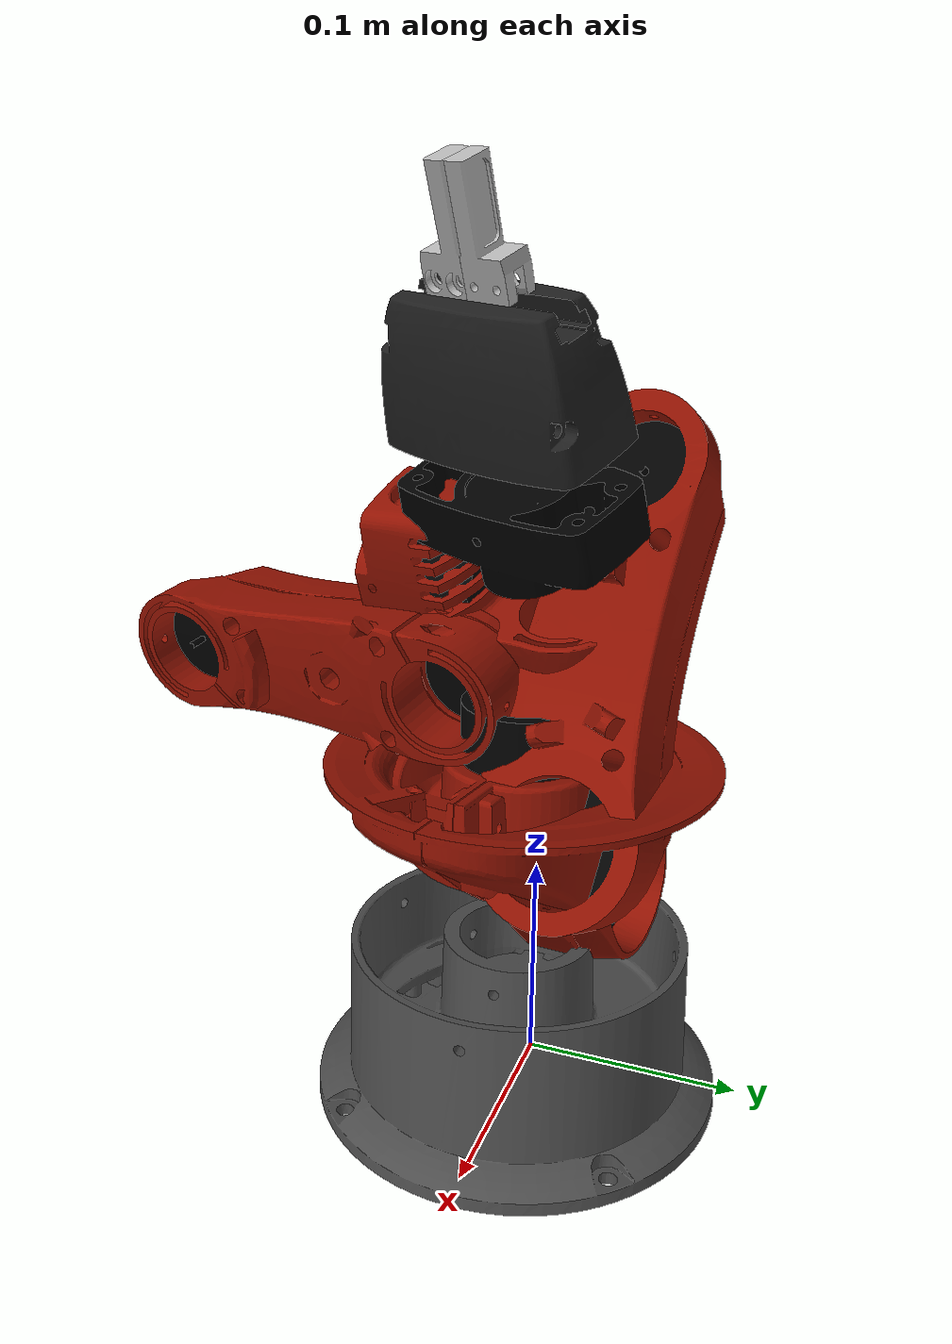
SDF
<sdf version='1.6'>
  <model name='youbot'>
    <link name='base_link'>
      <pose frame=''>0 0 0 0 -0 0</pose>
      <inertial>
        <pose frame=''>0 0 0 0 -0 0</pose>
        <mass>10.845</mass>
        <inertia>
          <ixx>0.11</ixx>
          <ixy>0</ixy>
          <ixz>0</ixz>
          <iyy>0.11</iyy>
          <iyz>0</iyz>
          <izz>0.11</izz>
        </inertia>
      </inertial>
      <collision name='base_link_fixed_joint_lump__arm_link_0_collision'>
        <pose frame=''>0 0 0 0 -0 0</pose>
        <geometry>
          <mesh>
            <scale>1 1 1</scale>
            <uri>model://youbot_description/meshes/youbot_arm/arm0_convex.dae</uri>
          </mesh>
        </geometry>
        <surface>
          <contact>
            <ode/>
          </contact>
          <friction>
            <ode/>
          </friction>
        </surface>
      </collision>
      <visual name='base_link_fixed_joint_lump__arm_link_0_visual'>
        <pose frame=''>0 0 0 0 -0 0</pose>
        <geometry>
          <mesh>
            <scale>1 1 1</scale>
            <uri>model://youbot_description/meshes/youbot_arm/arm0.dae</uri>
          </mesh>
        </geometry>
        <material>
          <script>
            <name>youbot/DarkGrey</name>
            <uri>file://media/materials/scripts/gazebo.material</uri>
          </script>
        </material>
      </visual>
      <gravity>1</gravity>
      <velocity_decay/>
    </link>
    <link name='arm_link_1'>
      <pose frame=''>0.024 0 0.096 0 -0 2.96706</pose>
      <inertial>
        <pose frame=''>0.01489 0.00213 0.00213 0 -0 0</pose>
        <mass>2.412</mass>
        <inertia>
          <ixx>0.003863</ixx>
          <ixy>-0.000979</ixy>
          <ixz>0</ixz>
          <iyy>0.006196</iyy>
          <iyz>0</iyz>
          <izz>0.006369</izz>
        </inertia>
      </inertial>
      <collision name='arm_link_1_collision'>
        <pose frame=''>0 0 0 0 -0 0</pose>
        <geometry>
          <mesh>
            <scale>1 1 1</scale>
            <uri>model://youbot_description/meshes/youbot_arm/arm1_convex.dae</uri>
          </mesh>
        </geometry>
        <surface>
          <contact>
            <ode/>
          </contact>
          <friction>
            <ode/>
          </friction>
        </surface>
      </collision>
      <visual name='arm_link_1_visual'>
        <pose frame=''>0 0 0 0 -0 0</pose>
        <geometry>
          <mesh>
            <scale>1 1 1</scale>
            <uri>model://youbot_description/meshes/youbot_arm/arm1.dae</uri>
          </mesh>
        </geometry>
        <material>
          <script>
            <uri>__default__</uri>
            <name>__default__</name>
          </script>
        </material>
      </visual>
      <gravity>1</gravity>
      <velocity_decay/>
    </link>
    <joint name='arm_joint_1' type='revolute'>
      <child>arm_link_1</child>
      <parent>base_link</parent>
      <axis>
        <xyz>0 0 -1</xyz>
        <limit>
          <lower>0</lower>
          <upper>5.89921</upper>
          <effort>9.5</effort>
          <velocity>1.5708</velocity>
        </limit>
        <dynamics>
          <damping>1</damping>
          <friction>1</friction>
          <spring_reference>0</spring_reference>
          <spring_stiffness>0</spring_stiffness>
        </dynamics>
        <use_parent_model_frame>1</use_parent_model_frame>
      </axis>
    </joint>
    <link name='arm_link_2'>
      <pose frame=''>-0.008499 0.00573 0.115 0 -1.13446 2.96706</pose>
      <inertial>
        <pose frame=''>0.10453 0.0017 -0.00297 0 -0 0</pose>
        <mass>1.155</mass>
        <inertia>
          <ixx>0.000823</ixx>
          <ixy>0</ixy>
          <ixz>-0</ixz>
          <iyy>0.004447</iyy>
          <iyz>0</iyz>
          <izz>0.004439</izz>
        </inertia>
      </inertial>
      <collision name='arm_link_2_collision'>
        <pose frame=''>0 -0.032 0.078 0 -0 0</pose>
        <geometry>
          <mesh>
            <scale>1 1 1</scale>
            <uri>model://youbot_description/meshes/youbot_arm/arm2_convex.dae</uri>
          </mesh>
        </geometry>
        <surface>
          <contact>
            <ode/>
          </contact>
          <friction>
            <ode/>
          </friction>
        </surface>
      </collision>
      <visual name='arm_link_2_visual'>
        <pose frame=''>0 -0.032 0.078 0 -0 0</pose>
        <geometry>
          <mesh>
            <scale>1 1 1</scale>
            <uri>model://youbot_description/meshes/youbot_arm/arm2.dae</uri>
          </mesh>
        </geometry>
        <material>
          <script>
            <uri>__default__</uri>
            <name>__default__</name>
          </script>
        </material>
      </visual>
      <gravity>1</gravity>
      <velocity_decay/>
    </link>
    <joint name='arm_joint_2' type='revolute'>
      <child>arm_link_2</child>
      <parent>arm_link_1</parent>
      <axis>
        <xyz>-0.173648 -0.984808 0</xyz>
        <limit>
          <lower>0</lower>
          <upper>2.70526</upper>
          <effort>9.5</effort>
          <velocity>1.5708</velocity>
        </limit>
        <dynamics>
          <damping>1</damping>
          <friction>1</friction>
          <spring_reference>0</spring_reference>
          <spring_stiffness>0</spring_stiffness>
        </dynamics>
        <use_parent_model_frame>1</use_parent_model_frame>
      </axis>
    </joint>
    <link name='arm_link_3'>
      <pose frame=''>0.129845 -0.018663 0.180506 -0 1.41372 2.96706</pose>
      <inertial>
        <pose frame=''>0.0001 0.0967 0.02107 0 -0 0</pose>
        <mass>0.934</mass>
        <inertia>
          <ixx>0.002459</ixx>
          <ixy>0</ixy>
          <ixz>0</ixz>
          <iyy>0.002571</iyy>
          <iyz>-0</iyz>
          <izz>0.000535</izz>
        </inertia>
      </inertial>
      <collision name='arm_link_3_collision'>
        <pose frame=''>0 0.028 0.079 0 -0 0</pose>
        <geometry>
          <mesh>
            <scale>1 1 1</scale>
            <uri>model://youbot_description/meshes/youbot_arm/arm3_convex.dae</uri>
          </mesh>
        </geometry>
        <surface>
          <contact>
            <ode/>
          </contact>
          <friction>
            <ode/>
          </friction>
        </surface>
      </collision>
      <visual name='arm_link_3_visual'>
        <pose frame=''>0 0.028 0.079 0 -0 0</pose>
        <geometry>
          <mesh>
            <scale>1 1 1</scale>
            <uri>model://youbot_description/meshes/youbot_arm/arm3.dae</uri>
          </mesh>
        </geometry>
        <material>
          <script>
            <uri>__default__</uri>
            <name>__default__</name>
          </script>
        </material>
      </visual>
      <gravity>1</gravity>
      <velocity_decay/>
    </link>
    <joint name='arm_joint_3' type='revolute'>
      <child>arm_link_3</child>
      <parent>arm_link_2</parent>
      <axis>
        <xyz>-0.173648 -0.984808 0</xyz>
        <limit>
          <lower>-5.18363</lower>
          <upper>0</upper>
          <effort>6</effort>
          <velocity>1.5708</velocity>
        </limit>
        <dynamics>
          <damping>1</damping>
          <friction>1</friction>
          <spring_reference>0</spring_reference>
          <spring_stiffness>0</spring_stiffness>
        </dynamics>
        <use_parent_model_frame>1</use_parent_model_frame>
      </axis>
    </joint>
    <link name='arm_link_4'>
      <pose frame=''>-0.001467 0.004491 0.201624 0 -0.375246 2.96706</pose>
      <inertial>
        <pose frame=''>0.00011 0.05103 -0.02319 0 -0 0</pose>
        <mass>0.877</mass>
        <inertia>
          <ixx>0.000869</ixx>
          <ixy>0</ixy>
          <ixz>-0</ixz>
          <iyy>0.001173</iyy>
          <iyz>-0.000231</iyz>
          <izz>0.001091</izz>
        </inertia>
      </inertial>
      <collision name='arm_link_4_collision'>
        <pose frame=''>0 -0.01 0.029 0 -0 0</pose>
        <geometry>
          <mesh>
            <scale>1 1 1</scale>
            <uri>model://youbot_description/meshes/youbot_arm/arm4_convex.dae</uri>
          </mesh>
        </geometry>
        <surface>
          <contact>
            <ode/>
          </contact>
          <friction>
            <ode/>
          </friction>
        </surface>
      </collision>
      <visual name='arm_link_4_visual'>
        <pose frame=''>0 -0.01 0.029 0 -0 0</pose>
        <geometry>
          <mesh>
            <scale>1 1 1</scale>
            <uri>model://youbot_description/meshes/youbot_arm/arm4.dae</uri>
          </mesh>
        </geometry>
        <material>
          <script>
            <uri>__default__</uri>
            <name>__default__</name>
          </script>
        </material>
      </visual>
      <gravity>1</gravity>
      <velocity_decay/>
    </link>
    <joint name='arm_joint_4' type='revolute'>
      <child>arm_link_4</child>
      <parent>arm_link_3</parent>
      <axis>
        <xyz>-0.173648 -0.984808 0</xyz>
        <limit>
          <lower>0</lower>
          <upper>3.57792</upper>
          <effort>2</effort>
          <velocity>1.5708</velocity>
        </limit>
        <dynamics>
          <damping>1</damping>
          <friction>1</friction>
          <spring_reference>0</spring_reference>
          <spring_stiffness>0</spring_stiffness>
        </dynamics>
        <use_parent_model_frame>1</use_parent_model_frame>
      </axis>
    </joint>
    <link name='arm_link_5'>
      <pose frame=''>0.047287 -0.004106 0.321846 -0.085052 0.365926 -0.408446</pose>
      <inertial>
        <pose frame=''>0 0.000822 -0.012035 0 -0 0</pose>
        <mass>0.351</mass>
        <inertia>
          <ixx>0.0103003</ixx>
          <ixy>0</ixy>
          <ixz>0</ixz>
          <iyy>0.0103593</iyy>
          <iyz>1.38404e-06</iyz>
          <izz>0.0101191</izz>
        </inertia>
      </inertial>
      <collision name='arm_link_5_collision'>
        <pose frame=''>0.003 0 -0.034 0 -0 0</pose>
        <geometry>
          <mesh>
            <scale>1 1 1</scale>
            <uri>model://youbot_description/meshes/youbot_arm/arm5_convex.dae</uri>
          </mesh>
        </geometry>
        <surface>
          <contact>
            <ode/>
          </contact>
          <friction>
            <ode/>
          </friction>
        </surface>
      </collision>
      <collision name='arm_link_5_fixed_joint_lump__gripper_palm_link_collision_1'>
        <pose frame=''>0 0 0 0 -0 0</pose>
        <geometry>
          <mesh>
            <scale>1 1 1</scale>
            <uri>model://youbot_description/meshes/youbot_gripper/palm_convex.dae</uri>
          </mesh>
        </geometry>
        <surface>
          <contact>
            <ode/>
          </contact>
          <friction>
            <ode/>
          </friction>
        </surface>
      </collision>
      <visual name='arm_link_5_visual'>
        <pose frame=''>0.003 0 -0.034 0 -0 0</pose>
        <geometry>
          <mesh>
            <scale>1 1 1</scale>
            <uri>model://youbot_description/meshes/youbot_arm/arm5.dae</uri>
          </mesh>
        </geometry>
        <material>
          <script>
            <uri>__default__</uri>
            <name>__default__</name>
          </script>
        </material>
      </visual>
      <visual name='arm_link_5_fixed_joint_lump__gripper_palm_link_visual_1'>
        <pose frame=''>0 0 0 0 -0 0</pose>
        <geometry>
          <mesh>
            <scale>1 1 1</scale>
            <uri>model://youbot_description/meshes/youbot_gripper/palm.dae</uri>
          </mesh>
        </geometry>
        <material>
          <script>
            <name>Gazebo/Black</name>
            <uri>file://media/materials/scripts/gazebo.material</uri>
          </script>
        </material>
      </visual>
      <velocity_decay/>
      <gravity>1</gravity>
      <velocity_decay/>
      <self_collide>1</self_collide>
    </link>
    <joint name='arm_joint_5' type='revolute'>
      <child>arm_link_5</child>
      <parent>arm_link_4</parent>
      <axis>
        <xyz>-0.360933 0.063642 -0.930418</xyz>
        <limit>
          <lower>0</lower>
          <upper>5.84685</upper>
          <effort>1</effort>
          <velocity>1.5708</velocity>
        </limit>
        <dynamics>
          <damping>1</damping>
          <friction>1</friction>
          <spring_reference>0</spring_reference>
          <spring_stiffness>0</spring_stiffness>
        </dynamics>
        <use_parent_model_frame>1</use_parent_model_frame>
      </axis>
    </joint>
    <link name='gripper_finger_link_l'>
      <pose frame=''>0.07026 -0.001105 0.362579 0.085052 -0.365926 2.73315</pose>
      <inertial>
        <pose frame=''>0 -0.001 0 0 -0 0</pose>
        <mass>0.01</mass>
        <inertia>
          <ixx>0.01</ixx>
          <ixy>0</ixy>
          <ixz>0</ixz>
          <iyy>0.01</iyy>
          <iyz>0</iyz>
          <izz>0.01</izz>
        </inertia>
      </inertial>
      <collision name='gripper_finger_link_l_collision'>
        <pose frame=''>0 0 0 0 -0 0</pose>
        <geometry>
          <mesh>
            <scale>1 1 1</scale>
            <uri>model://youbot_description/meshes/youbot_gripper/finger_convex.dae</uri>
          </mesh>
        </geometry>
      </collision>
      <visual name='gripper_finger_link_l_visual'>
        <pose frame=''>0 0 0 0 -0 0</pose>
        <geometry>
          <mesh>
            <scale>1 1 1</scale>
            <uri>model://youbot_description/meshes/youbot_gripper/finger.dae</uri>
          </mesh>
        </geometry>
      </visual>
    </link>
    <joint name='gripper_finger_joint_l' type='prismatic'>
      <child>gripper_finger_link_l</child>
      <parent>arm_link_5</parent>
      <axis>
        <xyz>0.367852 0.926495 -0.079325</xyz>
        <limit>
          <lower>0</lower>
          <upper>0.0115</upper>
          <effort>1</effort>
          <velocity>0.1</velocity>
        </limit>
        <dynamics>
          <damping>1</damping>
          <friction>1</friction>
          <spring_reference>0</spring_reference>
          <spring_stiffness>0</spring_stiffness>
        </dynamics>
        <use_parent_model_frame>1</use_parent_model_frame>
      </axis>
    </joint>
    <link name='gripper_finger_link_r'>
      <pose frame=''>0.064375 -0.015929 0.363848 -0.085052 0.365926 -0.408446</pose>
      <inertial>
        <pose frame=''>0 -0.001 0 0 -0 0</pose>
        <mass>0.01</mass>
        <inertia>
          <ixx>0.01</ixx>
          <ixy>0</ixy>
          <ixz>0</ixz>
          <iyy>0.01</iyy>
          <iyz>0</iyz>
          <izz>0.01</izz>
        </inertia>
      </inertial>
      <collision name='gripper_finger_link_r_collision'>
        <pose frame=''>0 0 0 0 -0 0</pose>
        <geometry>
          <mesh>
            <scale>1 1 1</scale>
            <uri>model://youbot_description/meshes/youbot_gripper/finger_convex.dae</uri>
          </mesh>
        </geometry>
      </collision>
      <visual name='gripper_finger_link_r_visual'>
        <pose frame=''>0 0 0 0 -0 0</pose>
        <geometry>
          <mesh>
            <scale>1 1 1</scale>
            <uri>model://youbot_description/meshes/youbot_gripper/finger.dae</uri>
          </mesh>
        </geometry>
      </visual>
    </link>
    <joint name='gripper_finger_joint_r' type='prismatic'>
      <child>gripper_finger_link_r</child>
      <parent>arm_link_5</parent>
      <axis>
        <xyz>-0.367852 -0.926495 0.079325</xyz>
        <limit>
          <lower>0</lower>
          <upper>0.0115</upper>
          <effort>1</effort>
          <velocity>0.1</velocity>
        </limit>
        <dynamics>
          <damping>1</damping>
          <friction>1</friction>
          <spring_reference>0</spring_reference>
          <spring_stiffness>0</spring_stiffness>
        </dynamics>
        <use_parent_model_frame>1</use_parent_model_frame>
      </axis>
    </joint>
    <plugin name='gazebo_ros_controller' filename='libgazebo_ros_control.so'/>
    <static>0</static>
    <plugin name='gazebo_ros_control' filename='libgazebo_ros_control.so'>
      <robotNamespace>/</robotNamespace>
    </plugin>
  </model>
</sdf>
